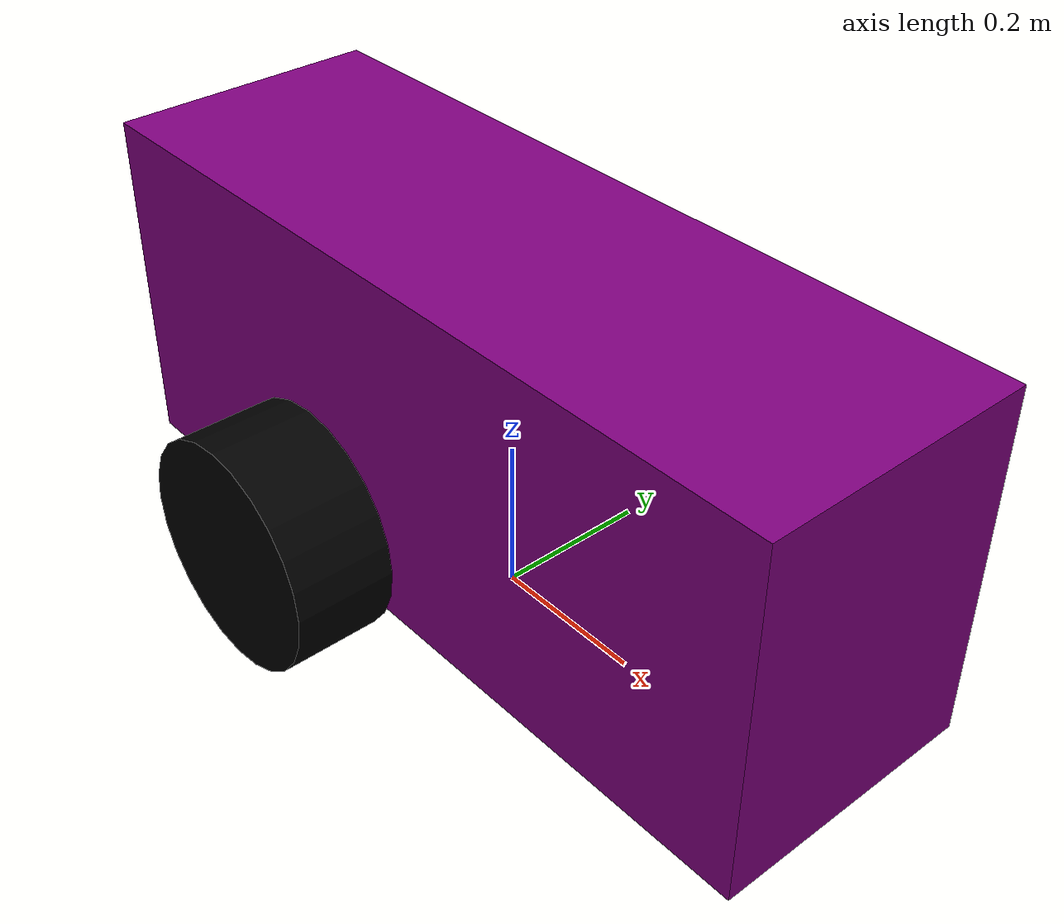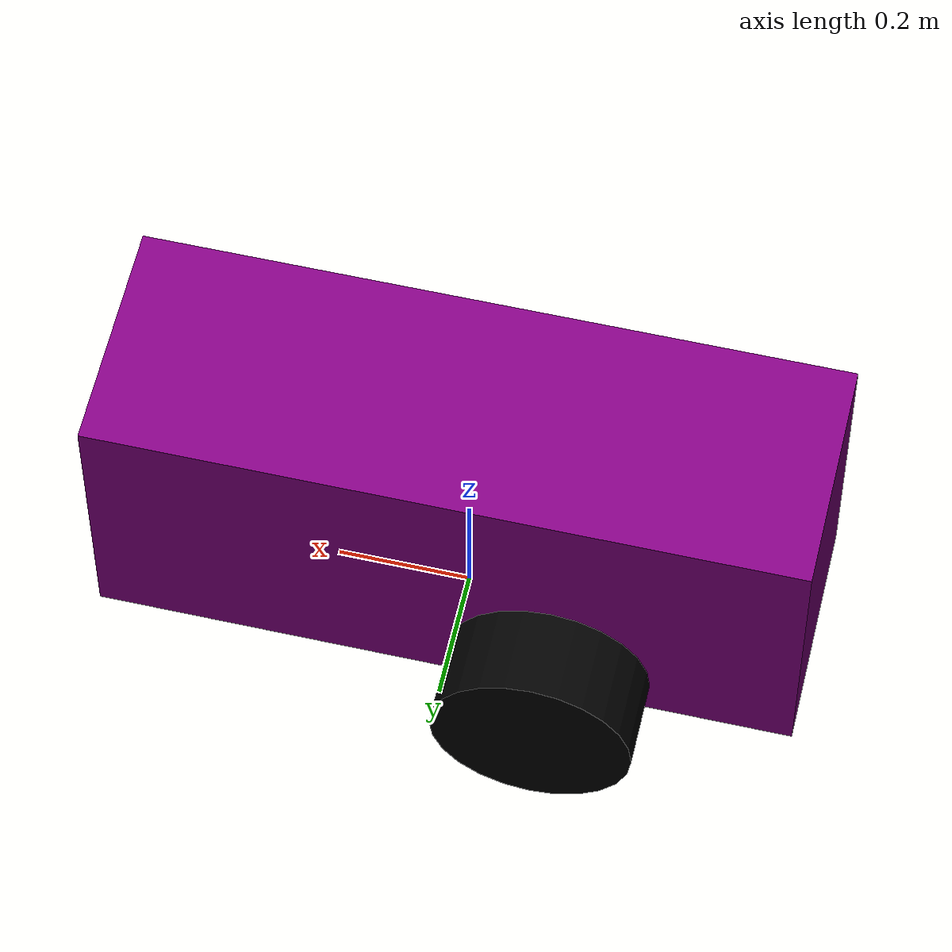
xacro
<?xml version="1.0"?>
<robot xmlns:xacro="http://www.ros.org/wiki/xacro" >

<xacro:include filename="inertial_macros.xacro"/>

<material name="purple">
    <color rgba="0.50 0.0 0.50 1.0"/>
</material>

<material name="orange">
    <color rgba="1 0.3 0.1 1"/>
</material>

<material name="blue">
    <color rgba="0.2 0.2 1 1"/>
</material>

<material name="black">
    <color rgba="0 0 0 1"/>
</material>

<!--base_link-->

<link name="base_link">

</link>

<!--Chassis link-->

<joint name="chassis_joint" type="fixed">
    <parent link="base_link"/>
    <child link="chassis"/>
    <axis xyz="1.0 0.0 0.0"/>
    <origin rpy="0.0 0.0 0.0" xyz="0.0 0.0 0.23"/>
</joint>

<link name="chassis">
    <visual>
        <origin xyz="0.0 0.0 0.03" rpy="0 0 0"/>
        <geometry>
            <box size="1.05 0.35 0.45"/>
        </geometry>
        <material name="purple"/>
    </visual>
     <collision>
        <origin xyz="0.0 0.0 0.03" rpy="0 0 0"/>
        <geometry>
            <box size="1.05 0.35 0.45"/>
        </geometry>
    </collision>
    <xacro:inertial_box mass="6" x="1.05" y="0.35" z="0.45">
        <origin xyz="0.0 0.0 0.03" rpy="0 0 0"/>
    </xacro:inertial_box>
</link>

<gazebo reference="chassis">
    <material>Gazebo/Purple</material>
</gazebo>

<!-- LEFT WHEEL -->

<joint name="left_wheel_joint" type="continuous">
    <parent link="base_link"/>
    <child link="left_wheel"/>
    <origin xyz="-0.16 0.24 0.1" rpy="-1.57 0.0 0.0"/>
    <axis xyz="0.0 0.0 1.0"/>
</joint>

<link name="left_wheel">
    <visual>
        <geometry>
            <cylinder length="0.13" radius="0.15" />
        </geometry>
        <material name="black"/>
    </visual>
    <collision>
        <geometry>
            <cylinder length="0.13" radius="0.15" />
        </geometry>
    </collision>
    <xacro:inertial_cylinder mass="1.5" length="0.13" radius="0.15">
        <origin xyz="0 0 0" rpy="0 0 0"/>
    </xacro:inertial_cylinder>
</link>

<gazebo reference="left_wheel">
    <material>Gazebo/Black</material>
    <mu1 value="1.0"/>
    <mu2 value="1.0"/>
</gazebo>

<!-- RIGHT WHEEL -->

<joint name="right_wheel_joint" type="continuous">
    <parent link="base_link"/>
    <child link="right_wheel"/>
    <origin xyz="-0.16 -0.24 0.1" rpy="-1.57 0.0 0.0"/>
    <axis xyz="0.0 0.0 1.0"/>
</joint>

<link name="right_wheel">
    <visual>
        <geometry>
            <cylinder length="0.13" radius="0.15" />/>
        </geometry>
        <material name="black"/>
    </visual>
    <collision>
        <geometry>
            <cylinder length="0.13" radius="0.15" />/>
        </geometry>
    </collision>
    <xacro:inertial_cylinder mass="1.5" length="0.13" radius="0.15">
        <origin xyz="0 0 0" rpy="0 0 0"/>
    </xacro:inertial_cylinder>
</link>

<gazebo reference="right_wheel">
    <material>Gazebo/Black</material>
    <mu1 value="1.0"/>
    <mu2 value="1.0"/>
</gazebo>

<!-- CASTER WHEEL -->

<joint name="caster_wheel_joint" type="fixed">
    <parent link="chassis"/>
    <child link="caster_wheel"/>
    <axis xyz="0.0 0.0 1.0"/>
    <origin xyz="0.16 0.0 -0.13" rpy="-1.57 0.0 0.0"/>
</joint>

<link name="caster_wheel">
    <visual>
        <geometry>
            <sphere radius="0.15" />
        </geometry>
        <material name="black"/>
    </visual>
    <collision>
        <geometry>
            <sphere radius="0.15" />
        </geometry>
    </collision>
    <xacro:inertial_sphere mass="3.0" radius="0.15">
        <origin xyz="0 0 0" rpy="0 0 0"/>
    </xacro:inertial_sphere>
</link>

<gazebo reference="caster_wheel">
    <material>Gazebo/Black</material>
    <mu1 value="0.001"/>
    <mu2 value="0.001"/>
</gazebo>

</robot>
